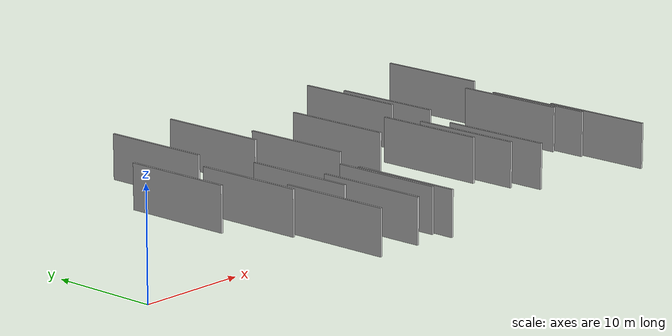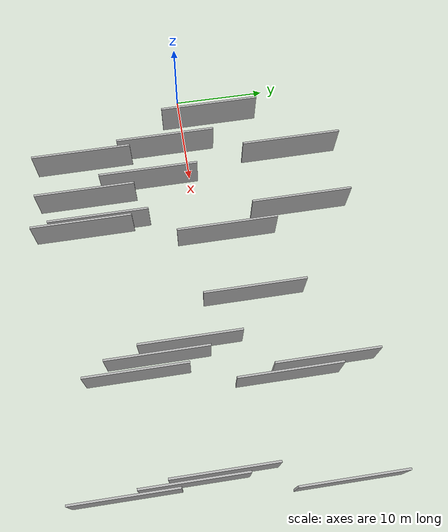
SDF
<sdf version="1.6">
 <world name="default">
  <scene>
   <sky><clouds><speed>12</speed></clouds></sky>
   <ambient>0.4 0.4 0.4 1</ambient>
   <background>0.7 0.7 0.7 1</background>
   <shadows>1</shadows>
  </scene>
  <gravity>0 0 -9.8066</gravity>
  <magnetic_field>6e-06 2.3e-05 -4.2e-05</magnetic_field>
  <physics default="0" name="default_physics" type="ode">
   <ode>
    <solver>
     <type>quick</type>
     <iters>10</iters>
     <sor>1.0</sor>
     <use_dynamic_moi_rescaling>0</use_dynamic_moi_rescaling>
    </solver>
    <constraints>
     <cfm>0</cfm>
     <erp>0.2</erp>
     <contact_max_correcting_vel>100</contact_max_correcting_vel>
     <contact_surface_layer>0.001</contact_surface_layer>
    </constraints>
   </ode>
   <max_step_size>0.004</max_step_size>
   <real_time_factor>1</real_time_factor>
   <real_time_update_rate>250</real_time_update_rate>
  </physics>
  <light name="sun" type="directional">
   <pose>0 0 10 0 0 0</pose>
   <diffuse>0.8 0.8 0.8 1</diffuse>
   <specular>0.2 0.2 0.2 1</specular>
   <attenuation>
    <range>1000</range>
    <constant>0.9</constant>
    <linear>0.01</linear>
    <quadratic>0.001</quadratic>
   </attenuation>
   <direction>-0.5 0.1 -0.9</direction>
  </light>
  <model name="grey_wall_1">
   <static>1</static>
   <pose>34.4727 9.5673 5.0 0.000000 0.000000 1.570796</pose>
   <link name="link">
    <pose>0 0 2.00 0 0 0</pose>
    <collision name="collision"><geometry><box><size>10.00 0.2 4.00</size></box></geometry></collision>
    <visual name="visual">
     <cast_shadows>0</cast_shadows>
     <geometry><box><size>10.00 0.2 4.00</size></box></geometry>
     <material>
      <script>
       <uri>model://HANNAS_wall/materials/scripts</uri>
       <uri>model://HANNAS_wall/materials/textures</uri>
       <name>vrc/HANNAS_wall</name>
      </script>
     </material>
    </visual>
   </link>
  </model>
  <model name="grey_wall_2">
   <static>1</static>
   <pose>43.1520 -1.4141 5.0 0.000000 0.000000 1.570796</pose>
   <link name="link">
    <pose>0 0 2.00 0 0 0</pose>
    <collision name="collision"><geometry><box><size>10.00 0.2 4.00</size></box></geometry></collision>
    <visual name="visual">
     <cast_shadows>0</cast_shadows>
     <geometry><box><size>10.00 0.2 4.00</size></box></geometry>
     <material>
      <script>
       <uri>model://HANNAS_wall/materials/scripts</uri>
       <uri>model://HANNAS_wall/materials/textures</uri>
       <name>vrc/HANNAS_wall</name>
      </script>
     </material>
    </visual>
   </link>
  </model>
  <model name="grey_wall_3">
   <static>1</static>
   <pose>18.0984 10.3408 5.0 0.000000 0.000000 1.570796</pose>
   <link name="link">
    <pose>0 0 2.00 0 0 0</pose>
    <collision name="collision"><geometry><box><size>10.00 0.2 4.00</size></box></geometry></collision>
    <visual name="visual">
     <cast_shadows>0</cast_shadows>
     <geometry><box><size>10.00 0.2 4.00</size></box></geometry>
     <material>
      <script>
       <uri>model://HANNAS_wall/materials/scripts</uri>
       <uri>model://HANNAS_wall/materials/textures</uri>
       <name>vrc/HANNAS_wall</name>
      </script>
     </material>
    </visual>
   </link>
  </model>
  <model name="grey_wall_4">
   <static>1</static>
   <pose>44.0207 -10.3526 5.0 0.000000 0.000000 1.570796</pose>
   <link name="link">
    <pose>0 0 2.00 0 0 0</pose>
    <collision name="collision"><geometry><box><size>10.00 0.2 4.00</size></box></geometry></collision>
    <visual name="visual">
     <cast_shadows>0</cast_shadows>
     <geometry><box><size>10.00 0.2 4.00</size></box></geometry>
     <material>
      <script>
       <uri>model://HANNAS_wall/materials/scripts</uri>
       <uri>model://HANNAS_wall/materials/textures</uri>
       <name>vrc/HANNAS_wall</name>
      </script>
     </material>
    </visual>
   </link>
  </model>
  <model name="grey_wall_5">
   <static>1</static>
   <pose>17.6958 -11.6697 5.0 0.000000 0.000000 1.570796</pose>
   <link name="link">
    <pose>0 0 2.00 0 0 0</pose>
    <collision name="collision"><geometry><box><size>10.00 0.2 4.00</size></box></geometry></collision>
    <visual name="visual">
     <cast_shadows>0</cast_shadows>
     <geometry><box><size>10.00 0.2 4.00</size></box></geometry>
     <material>
      <script>
       <uri>model://HANNAS_wall/materials/scripts</uri>
       <uri>model://HANNAS_wall/materials/textures</uri>
       <name>vrc/HANNAS_wall</name>
      </script>
     </material>
    </visual>
   </link>
  </model>
  <model name="grey_wall_6">
   <static>1</static>
   <pose>20.0327 2.5220 5.0 0.000000 0.000000 1.570796</pose>
   <link name="link">
    <pose>0 0 2.00 0 0 0</pose>
    <collision name="collision"><geometry><box><size>10.00 0.2 4.00</size></box></geometry></collision>
    <visual name="visual">
     <cast_shadows>0</cast_shadows>
     <geometry><box><size>10.00 0.2 4.00</size></box></geometry>
     <material>
      <script>
       <uri>model://HANNAS_wall/materials/scripts</uri>
       <uri>model://HANNAS_wall/materials/textures</uri>
       <name>vrc/HANNAS_wall</name>
      </script>
     </material>
    </visual>
   </link>
  </model>
  <model name="grey_wall_7">
   <static>1</static>
   <pose>9.2825 -2.2508 5.0 0.000000 0.000000 1.570796</pose>
   <link name="link">
    <pose>0 0 2.00 0 0 0</pose>
    <collision name="collision"><geometry><box><size>10.00 0.2 4.00</size></box></geometry></collision>
    <visual name="visual">
     <cast_shadows>0</cast_shadows>
     <geometry><box><size>10.00 0.2 4.00</size></box></geometry>
     <material>
      <script>
       <uri>model://HANNAS_wall/materials/scripts</uri>
       <uri>model://HANNAS_wall/materials/textures</uri>
       <name>vrc/HANNAS_wall</name>
      </script>
     </material>
    </visual>
   </link>
  </model>
  <model name="grey_wall_8">
   <static>1</static>
   <pose>6.2477 2.7773 5.0 0.000000 0.000000 1.570796</pose>
   <link name="link">
    <pose>0 0 2.00 0 0 0</pose>
    <collision name="collision"><geometry><box><size>10.00 0.2 4.00</size></box></geometry></collision>
    <visual name="visual">
     <cast_shadows>0</cast_shadows>
     <geometry><box><size>10.00 0.2 4.00</size></box></geometry>
     <material>
      <script>
       <uri>model://HANNAS_wall/materials/scripts</uri>
       <uri>model://HANNAS_wall/materials/textures</uri>
       <name>vrc/HANNAS_wall</name>
      </script>
     </material>
    </visual>
   </link>
  </model>
  <model name="grey_wall_9">
   <static>1</static>
   <pose>17.2948 -9.9569 5.0 0.000000 0.000000 1.570796</pose>
   <link name="link">
    <pose>0 0 2.00 0 0 0</pose>
    <collision name="collision"><geometry><box><size>10.00 0.2 4.00</size></box></geometry></collision>
    <visual name="visual">
     <cast_shadows>0</cast_shadows>
     <geometry><box><size>10.00 0.2 4.00</size></box></geometry>
     <material>
      <script>
       <uri>model://HANNAS_wall/materials/scripts</uri>
       <uri>model://HANNAS_wall/materials/textures</uri>
       <name>vrc/HANNAS_wall</name>
      </script>
     </material>
    </visual>
   </link>
  </model>
  <model name="grey_wall_10">
   <static>1</static>
   <pose>35.2996 5.9217 5.0 0.000000 0.000000 1.570796</pose>
   <link name="link">
    <pose>0 0 2.00 0 0 0</pose>
    <collision name="collision"><geometry><box><size>10.00 0.2 4.00</size></box></geometry></collision>
    <visual name="visual">
     <cast_shadows>0</cast_shadows>
     <geometry><box><size>10.00 0.2 4.00</size></box></geometry>
     <material>
      <script>
       <uri>model://HANNAS_wall/materials/scripts</uri>
       <uri>model://HANNAS_wall/materials/textures</uri>
       <name>vrc/HANNAS_wall</name>
      </script>
     </material>
    </visual>
   </link>
  </model>
  <model name="grey_wall_11">
   <static>1</static>
   <pose>12.9518 -4.4493 5.0 0.000000 0.000000 1.570796</pose>
   <link name="link">
    <pose>0 0 2.00 0 0 0</pose>
    <collision name="collision"><geometry><box><size>10.00 0.2 4.00</size></box></geometry></collision>
    <visual name="visual">
     <cast_shadows>0</cast_shadows>
     <geometry><box><size>10.00 0.2 4.00</size></box></geometry>
     <material>
      <script>
       <uri>model://HANNAS_wall/materials/scripts</uri>
       <uri>model://HANNAS_wall/materials/textures</uri>
       <name>vrc/HANNAS_wall</name>
      </script>
     </material>
    </visual>
   </link>
  </model>
  <model name="grey_wall_12">
   <static>1</static>
   <pose>9.9595 -10.9846 5.0 0.000000 0.000000 1.570796</pose>
   <link name="link">
    <pose>0 0 2.00 0 0 0</pose>
    <collision name="collision"><geometry><box><size>10.00 0.2 4.00</size></box></geometry></collision>
    <visual name="visual">
     <cast_shadows>0</cast_shadows>
     <geometry><box><size>10.00 0.2 4.00</size></box></geometry>
     <material>
      <script>
       <uri>model://HANNAS_wall/materials/scripts</uri>
       <uri>model://HANNAS_wall/materials/textures</uri>
       <name>vrc/HANNAS_wall</name>
      </script>
     </material>
    </visual>
   </link>
  </model>
  <model name="grey_wall_13">
   <static>1</static>
   <pose>26.8131 4.1192 5.0 0.000000 0.000000 1.570796</pose>
   <link name="link">
    <pose>0 0 2.00 0 0 0</pose>
    <collision name="collision"><geometry><box><size>10.00 0.2 4.00</size></box></geometry></collision>
    <visual name="visual">
     <cast_shadows>0</cast_shadows>
     <geometry><box><size>10.00 0.2 4.00</size></box></geometry>
     <material>
      <script>
       <uri>model://HANNAS_wall/materials/scripts</uri>
       <uri>model://HANNAS_wall/materials/textures</uri>
       <name>vrc/HANNAS_wall</name>
      </script>
     </material>
    </visual>
   </link>
  </model>
  <model name="grey_wall_14">
   <static>1</static>
   <pose>45.4648 9.5685 5.0 0.000000 0.000000 1.570796</pose>
   <link name="link">
    <pose>0 0 2.00 0 0 0</pose>
    <collision name="collision"><geometry><box><size>10.00 0.2 4.00</size></box></geometry></collision>
    <visual name="visual">
     <cast_shadows>0</cast_shadows>
     <geometry><box><size>10.00 0.2 4.00</size></box></geometry>
     <material>
      <script>
       <uri>model://HANNAS_wall/materials/scripts</uri>
       <uri>model://HANNAS_wall/materials/textures</uri>
       <name>vrc/HANNAS_wall</name>
      </script>
     </material>
    </visual>
   </link>
  </model>
  <model name="grey_wall_15">
   <static>1</static>
   <pose>33.2402 -8.0857 5.0 0.000000 0.000000 1.570796</pose>
   <link name="link">
    <pose>0 0 2.00 0 0 0</pose>
    <collision name="collision"><geometry><box><size>10.00 0.2 4.00</size></box></geometry></collision>
    <visual name="visual">
     <cast_shadows>0</cast_shadows>
     <geometry><box><size>10.00 0.2 4.00</size></box></geometry>
     <material>
      <script>
       <uri>model://HANNAS_wall/materials/scripts</uri>
       <uri>model://HANNAS_wall/materials/textures</uri>
       <name>vrc/HANNAS_wall</name>
      </script>
     </material>
    </visual>
   </link>
  </model>
  <model name="grey_wall_16">
   <static>1</static>
   <pose>11.5092 10.5011 5.0 0.000000 0.000000 1.570796</pose>
   <link name="link">
    <pose>0 0 2.00 0 0 0</pose>
    <collision name="collision"><geometry><box><size>10.00 0.2 4.00</size></box></geometry></collision>
    <visual name="visual">
     <cast_shadows>0</cast_shadows>
     <geometry><box><size>10.00 0.2 4.00</size></box></geometry>
     <material>
      <script>
       <uri>model://HANNAS_wall/materials/scripts</uri>
       <uri>model://HANNAS_wall/materials/textures</uri>
       <name>vrc/HANNAS_wall</name>
      </script>
     </material>
    </visual>
   </link>
  </model>
  <model name="grey_wall_17">
   <static>1</static>
   <pose>14.2825 -11.0219 5.0 0.000000 0.000000 1.570796</pose>
   <link name="link">
    <pose>0 0 2.00 0 0 0</pose>
    <collision name="collision"><geometry><box><size>10.00 0.2 4.00</size></box></geometry></collision>
    <visual name="visual">
     <cast_shadows>0</cast_shadows>
     <geometry><box><size>10.00 0.2 4.00</size></box></geometry>
     <material>
      <script>
       <uri>model://HANNAS_wall/materials/scripts</uri>
       <uri>model://HANNAS_wall/materials/textures</uri>
       <name>vrc/HANNAS_wall</name>
      </script>
     </material>
    </visual>
   </link>
  </model>
  <model name="grey_wall_18">
   <static>1</static>
   <pose>30.8994 -2.7188 5.0 0.000000 0.000000 1.570796</pose>
   <link name="link">
    <pose>0 0 2.00 0 0 0</pose>
    <collision name="collision"><geometry><box><size>10.00 0.2 4.00</size></box></geometry></collision>
    <visual name="visual">
     <cast_shadows>0</cast_shadows>
     <geometry><box><size>10.00 0.2 4.00</size></box></geometry>
     <material>
      <script>
       <uri>model://HANNAS_wall/materials/scripts</uri>
       <uri>model://HANNAS_wall/materials/textures</uri>
       <name>vrc/HANNAS_wall</name>
      </script>
     </material>
    </visual>
   </link>
  </model>
  <model name="grey_wall_19">
   <static>1</static>
   <pose>31.9174 -5.9419 5.0 0.000000 0.000000 1.570796</pose>
   <link name="link">
    <pose>0 0 2.00 0 0 0</pose>
    <collision name="collision"><geometry><box><size>10.00 0.2 4.00</size></box></geometry></collision>
    <visual name="visual">
     <cast_shadows>0</cast_shadows>
     <geometry><box><size>10.00 0.2 4.00</size></box></geometry>
     <material>
      <script>
       <uri>model://HANNAS_wall/materials/scripts</uri>
       <uri>model://HANNAS_wall/materials/textures</uri>
       <name>vrc/HANNAS_wall</name>
      </script>
     </material>
    </visual>
   </link>
  </model>
  <model name="grey_wall_20">
   <static>1</static>
   <pose>43.6114 -4.1679 5.0 0.000000 0.000000 1.570796</pose>
   <link name="link">
    <pose>0 0 2.00 0 0 0</pose>
    <collision name="collision"><geometry><box><size>10.00 0.2 4.00</size></box></geometry></collision>
    <visual name="visual">
     <cast_shadows>0</cast_shadows>
     <geometry><box><size>10.00 0.2 4.00</size></box></geometry>
     <material>
      <script>
       <uri>model://HANNAS_wall/materials/scripts</uri>
       <uri>model://HANNAS_wall/materials/textures</uri>
       <name>vrc/HANNAS_wall</name>
      </script>
     </material>
    </visual>
   </link>
  </model>
 </world>
</sdf>
